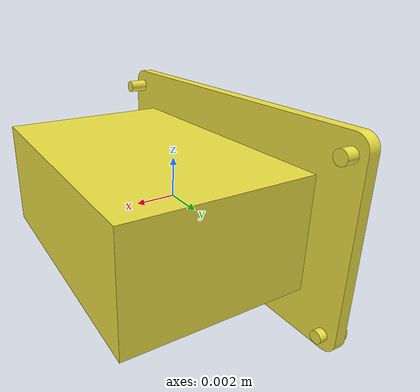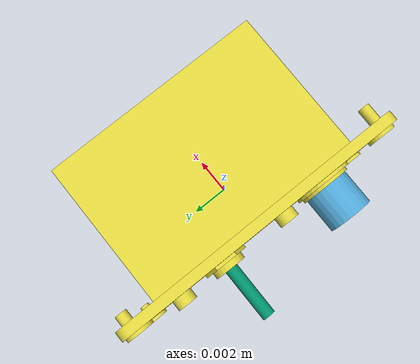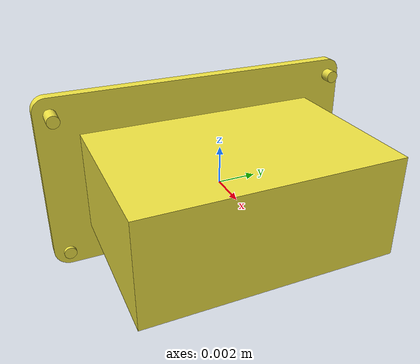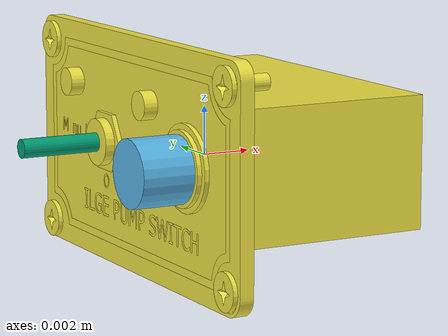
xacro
<robot name="partnet_0799c797-13b2-464f-815e-90c94b472e48" xmlns:xacro="http://wiki.ros.org/xacro">
	<xacro:property name="scale" value="100" /><link name="base" />
	<link name="link_0">
		<visual name="switch-1">
			<origin xyz="${-0.4529609723383803 / scale} ${-0.04648585143361487 / scale} ${-0.5590540000000006 / scale}" />
			<geometry>
				<mesh filename="package://switch_description/urdf/100845/textured_objs/original-13.obj" scale="${1 / scale} ${1 / scale} ${1 / scale}" />
			</geometry>
		</visual>
		<collision>
			<origin xyz="${-0.4529609723383803 / scale} ${-0.04648585143361487 / scale} ${-0.5590540000000006 / scale}" />
			<geometry>
				<mesh filename="package://switch_description/urdf/100845/textured_objs/original-13.obj" scale="${1 / scale} ${1 / scale} ${1 / scale}" />
			</geometry>
		</collision>
	</link>
	<joint name="joint_0" type="continuous">
		<origin xyz="${0.4529609723383803 / scale} ${0.04648585143361487 / scale} ${0.5590540000000006 / scale}" />
		<axis xyz="0 0 1" />
		<child link="link_0" />
		<parent link="link_2" />
	</joint>
	<link name="link_1">
		<visual name="switch-2">
			<origin xyz="${0 / scale} ${-0.042935 / scale} ${-0.36 / scale}" />
			<geometry>
				<mesh filename="package://switch_description/urdf/100845/textured_objs/original-19.obj" scale="${1 / scale} ${1 / scale} ${1 / scale}" />
			</geometry>
		</visual>
		<collision>
			<origin xyz="${0 / scale} ${-0.042935 / scale} ${-0.36 / scale}" />
			<geometry>
				<mesh filename="package://switch_description/urdf/100845/textured_objs/original-19.obj" scale="${1 / scale} ${1 / scale} ${1 / scale}" />
			</geometry>
		</collision>
	</link>
	<joint name="joint_1" type="revolute">
		<origin xyz="${0 / scale} ${0.042935 / scale} ${0.36 / scale}" />
		<axis xyz="-1 0 0" />
		<child link="link_1" />
		<parent link="link_2" />
		<limit lower="-0.5235987755982988" upper="0.5235987755982988" effort="10.0" velocity="0.1" />
	</joint>
	<link name="link_2">
		<visual name="base_body-3">
			<origin xyz="${0 / scale} ${0 / scale} ${0 / scale}" />
			<geometry>
				<mesh filename="package://switch_description/urdf/100845/textured_objs/original-29.obj" scale="${1 / scale} ${1 / scale} ${1 / scale}" />
			</geometry>
		</visual>
		<visual name="base_body-3">
			<origin xyz="${0 / scale} ${0 / scale} ${0 / scale}" />
			<geometry>
				<mesh filename="package://switch_description/urdf/100845/textured_objs/original-21.obj" scale="${1 / scale} ${1 / scale} ${1 / scale}" />
			</geometry>
		</visual>
		<visual name="base_body-3">
			<origin xyz="${0 / scale} ${0 / scale} ${0 / scale}" />
			<geometry>
				<mesh filename="package://switch_description/urdf/100845/textured_objs/original-30.obj" scale="${1 / scale} ${1 / scale} ${1 / scale}" />
			</geometry>
		</visual>
		<visual name="base_body-3">
			<origin xyz="${0 / scale} ${0 / scale} ${0 / scale}" />
			<geometry>
				<mesh filename="package://switch_description/urdf/100845/textured_objs/original-41.obj" scale="${1 / scale} ${1 / scale} ${1 / scale}" />
			</geometry>
		</visual>
		<visual name="base_body-3">
			<origin xyz="${0 / scale} ${0 / scale} ${0 / scale}" />
			<geometry>
				<mesh filename="package://switch_description/urdf/100845/textured_objs/original-28.obj" scale="${1 / scale} ${1 / scale} ${1 / scale}" />
			</geometry>
		</visual>
		<visual name="base_body-3">
			<origin xyz="${0 / scale} ${0 / scale} ${0 / scale}" />
			<geometry>
				<mesh filename="package://switch_description/urdf/100845/textured_objs/original-64.obj" scale="${1 / scale} ${1 / scale} ${1 / scale}" />
			</geometry>
		</visual>
		<visual name="base_body-3">
			<origin xyz="${0 / scale} ${0 / scale} ${0 / scale}" />
			<geometry>
				<mesh filename="package://switch_description/urdf/100845/textured_objs/original-43.obj" scale="${1 / scale} ${1 / scale} ${1 / scale}" />
			</geometry>
		</visual>
		<visual name="base_body-3">
			<origin xyz="${0 / scale} ${0 / scale} ${0 / scale}" />
			<geometry>
				<mesh filename="package://switch_description/urdf/100845/textured_objs/original-52.obj" scale="${1 / scale} ${1 / scale} ${1 / scale}" />
			</geometry>
		</visual>
		<visual name="base_body-3">
			<origin xyz="${0 / scale} ${0 / scale} ${0 / scale}" />
			<geometry>
				<mesh filename="package://switch_description/urdf/100845/textured_objs/original-22.obj" scale="${1 / scale} ${1 / scale} ${1 / scale}" />
			</geometry>
		</visual>
		<visual name="base_body-3">
			<origin xyz="${0 / scale} ${0 / scale} ${0 / scale}" />
			<geometry>
				<mesh filename="package://switch_description/urdf/100845/textured_objs/original-26.obj" scale="${1 / scale} ${1 / scale} ${1 / scale}" />
			</geometry>
		</visual>
		<visual name="base_body-3">
			<origin xyz="${0 / scale} ${0 / scale} ${0 / scale}" />
			<geometry>
				<mesh filename="package://switch_description/urdf/100845/textured_objs/original-4.obj" scale="${1 / scale} ${1 / scale} ${1 / scale}" />
			</geometry>
		</visual>
		<visual name="base_body-3">
			<origin xyz="${0 / scale} ${0 / scale} ${0 / scale}" />
			<geometry>
				<mesh filename="package://switch_description/urdf/100845/textured_objs/original-3.obj" scale="${1 / scale} ${1 / scale} ${1 / scale}" />
			</geometry>
		</visual>
		<visual name="base_body-3">
			<origin xyz="${0 / scale} ${0 / scale} ${0 / scale}" />
			<geometry>
				<mesh filename="package://switch_description/urdf/100845/textured_objs/original-2.obj" scale="${1 / scale} ${1 / scale} ${1 / scale}" />
			</geometry>
		</visual>
		<visual name="base_body-3">
			<origin xyz="${0 / scale} ${0 / scale} ${0 / scale}" />
			<geometry>
				<mesh filename="package://switch_description/urdf/100845/textured_objs/original-44.obj" scale="${1 / scale} ${1 / scale} ${1 / scale}" />
			</geometry>
		</visual>
		<visual name="base_body-3">
			<origin xyz="${0 / scale} ${0 / scale} ${0 / scale}" />
			<geometry>
				<mesh filename="package://switch_description/urdf/100845/textured_objs/original-16.obj" scale="${1 / scale} ${1 / scale} ${1 / scale}" />
			</geometry>
		</visual>
		<visual name="base_body-3">
			<origin xyz="${0 / scale} ${0 / scale} ${0 / scale}" />
			<geometry>
				<mesh filename="package://switch_description/urdf/100845/textured_objs/original-8.obj" scale="${1 / scale} ${1 / scale} ${1 / scale}" />
			</geometry>
		</visual>
		<visual name="base_body-3">
			<origin xyz="${0 / scale} ${0 / scale} ${0 / scale}" />
			<geometry>
				<mesh filename="package://switch_description/urdf/100845/textured_objs/original-9.obj" scale="${1 / scale} ${1 / scale} ${1 / scale}" />
			</geometry>
		</visual>
		<visual name="base_body-3">
			<origin xyz="${0 / scale} ${0 / scale} ${0 / scale}" />
			<geometry>
				<mesh filename="package://switch_description/urdf/100845/textured_objs/original-45.obj" scale="${1 / scale} ${1 / scale} ${1 / scale}" />
			</geometry>
		</visual>
		<visual name="base_body-3">
			<origin xyz="${0 / scale} ${0 / scale} ${0 / scale}" />
			<geometry>
				<mesh filename="package://switch_description/urdf/100845/textured_objs/original-35.obj" scale="${1 / scale} ${1 / scale} ${1 / scale}" />
			</geometry>
		</visual>
		<visual name="base_body-3">
			<origin xyz="${0 / scale} ${0 / scale} ${0 / scale}" />
			<geometry>
				<mesh filename="package://switch_description/urdf/100845/textured_objs/original-49.obj" scale="${1 / scale} ${1 / scale} ${1 / scale}" />
			</geometry>
		</visual>
		<visual name="base_body-3">
			<origin xyz="${0 / scale} ${0 / scale} ${0 / scale}" />
			<geometry>
				<mesh filename="package://switch_description/urdf/100845/textured_objs/original-61.obj" scale="${1 / scale} ${1 / scale} ${1 / scale}" />
			</geometry>
		</visual>
		<visual name="base_body-3">
			<origin xyz="${0 / scale} ${0 / scale} ${0 / scale}" />
			<geometry>
				<mesh filename="package://switch_description/urdf/100845/textured_objs/original-59.obj" scale="${1 / scale} ${1 / scale} ${1 / scale}" />
			</geometry>
		</visual>
		<visual name="base_body-3">
			<origin xyz="${0 / scale} ${0 / scale} ${0 / scale}" />
			<geometry>
				<mesh filename="package://switch_description/urdf/100845/textured_objs/original-5.obj" scale="${1 / scale} ${1 / scale} ${1 / scale}" />
			</geometry>
		</visual>
		<visual name="base_body-3">
			<origin xyz="${0 / scale} ${0 / scale} ${0 / scale}" />
			<geometry>
				<mesh filename="package://switch_description/urdf/100845/textured_objs/original-63.obj" scale="${1 / scale} ${1 / scale} ${1 / scale}" />
			</geometry>
		</visual>
		<visual name="base_body-3">
			<origin xyz="${0 / scale} ${0 / scale} ${0 / scale}" />
			<geometry>
				<mesh filename="package://switch_description/urdf/100845/textured_objs/original-27.obj" scale="${1 / scale} ${1 / scale} ${1 / scale}" />
			</geometry>
		</visual>
		<visual name="base_body-3">
			<origin xyz="${0 / scale} ${0 / scale} ${0 / scale}" />
			<geometry>
				<mesh filename="package://switch_description/urdf/100845/textured_objs/original-51.obj" scale="${1 / scale} ${1 / scale} ${1 / scale}" />
			</geometry>
		</visual>
		<visual name="base_body-3">
			<origin xyz="${0 / scale} ${0 / scale} ${0 / scale}" />
			<geometry>
				<mesh filename="package://switch_description/urdf/100845/textured_objs/original-55.obj" scale="${1 / scale} ${1 / scale} ${1 / scale}" />
			</geometry>
		</visual>
		<visual name="base_body-3">
			<origin xyz="${0 / scale} ${0 / scale} ${0 / scale}" />
			<geometry>
				<mesh filename="package://switch_description/urdf/100845/textured_objs/original-50.obj" scale="${1 / scale} ${1 / scale} ${1 / scale}" />
			</geometry>
		</visual>
		<visual name="base_body-3">
			<origin xyz="${0 / scale} ${0 / scale} ${0 / scale}" />
			<geometry>
				<mesh filename="package://switch_description/urdf/100845/textured_objs/original-6.obj" scale="${1 / scale} ${1 / scale} ${1 / scale}" />
			</geometry>
		</visual>
		<visual name="base_body-3">
			<origin xyz="${0 / scale} ${0 / scale} ${0 / scale}" />
			<geometry>
				<mesh filename="package://switch_description/urdf/100845/textured_objs/original-31.obj" scale="${1 / scale} ${1 / scale} ${1 / scale}" />
			</geometry>
		</visual>
		<visual name="base_body-3">
			<origin xyz="${0 / scale} ${0 / scale} ${0 / scale}" />
			<geometry>
				<mesh filename="package://switch_description/urdf/100845/textured_objs/original-37.obj" scale="${1 / scale} ${1 / scale} ${1 / scale}" />
			</geometry>
		</visual>
		<visual name="base_body-3">
			<origin xyz="${0 / scale} ${0 / scale} ${0 / scale}" />
			<geometry>
				<mesh filename="package://switch_description/urdf/100845/textured_objs/original-48.obj" scale="${1 / scale} ${1 / scale} ${1 / scale}" />
			</geometry>
		</visual>
		<visual name="base_body-3">
			<origin xyz="${0 / scale} ${0 / scale} ${0 / scale}" />
			<geometry>
				<mesh filename="package://switch_description/urdf/100845/textured_objs/original-15.obj" scale="${1 / scale} ${1 / scale} ${1 / scale}" />
			</geometry>
		</visual>
		<visual name="base_body-3">
			<origin xyz="${0 / scale} ${0 / scale} ${0 / scale}" />
			<geometry>
				<mesh filename="package://switch_description/urdf/100845/textured_objs/original-56.obj" scale="${1 / scale} ${1 / scale} ${1 / scale}" />
			</geometry>
		</visual>
		<visual name="base_body-3">
			<origin xyz="${0 / scale} ${0 / scale} ${0 / scale}" />
			<geometry>
				<mesh filename="package://switch_description/urdf/100845/textured_objs/original-62.obj" scale="${1 / scale} ${1 / scale} ${1 / scale}" />
			</geometry>
		</visual>
		<visual name="base_body-3">
			<origin xyz="${0 / scale} ${0 / scale} ${0 / scale}" />
			<geometry>
				<mesh filename="package://switch_description/urdf/100845/textured_objs/original-23.obj" scale="${1 / scale} ${1 / scale} ${1 / scale}" />
			</geometry>
		</visual>
		<visual name="base_body-3">
			<origin xyz="${0 / scale} ${0 / scale} ${0 / scale}" />
			<geometry>
				<mesh filename="package://switch_description/urdf/100845/textured_objs/original-66.obj" scale="${1 / scale} ${1 / scale} ${1 / scale}" />
			</geometry>
		</visual>
		<visual name="base_body-3">
			<origin xyz="${0 / scale} ${0 / scale} ${0 / scale}" />
			<geometry>
				<mesh filename="package://switch_description/urdf/100845/textured_objs/original-58.obj" scale="${1 / scale} ${1 / scale} ${1 / scale}" />
			</geometry>
		</visual>
		<visual name="base_body-3">
			<origin xyz="${0 / scale} ${0 / scale} ${0 / scale}" />
			<geometry>
				<mesh filename="package://switch_description/urdf/100845/textured_objs/original-67.obj" scale="${1 / scale} ${1 / scale} ${1 / scale}" />
			</geometry>
		</visual>
		<visual name="base_body-3">
			<origin xyz="${0 / scale} ${0 / scale} ${0 / scale}" />
			<geometry>
				<mesh filename="package://switch_description/urdf/100845/textured_objs/original-69.obj" scale="${1 / scale} ${1 / scale} ${1 / scale}" />
			</geometry>
		</visual>
		<visual name="base_body-3">
			<origin xyz="${0 / scale} ${0 / scale} ${0 / scale}" />
			<geometry>
				<mesh filename="package://switch_description/urdf/100845/textured_objs/original-11.obj" scale="${1 / scale} ${1 / scale} ${1 / scale}" />
			</geometry>
		</visual>
		<visual name="base_body-3">
			<origin xyz="${0 / scale} ${0 / scale} ${0 / scale}" />
			<geometry>
				<mesh filename="package://switch_description/urdf/100845/textured_objs/original-38.obj" scale="${1 / scale} ${1 / scale} ${1 / scale}" />
			</geometry>
		</visual>
		<visual name="base_body-3">
			<origin xyz="${0 / scale} ${0 / scale} ${0 / scale}" />
			<geometry>
				<mesh filename="package://switch_description/urdf/100845/textured_objs/original-68.obj" scale="${1 / scale} ${1 / scale} ${1 / scale}" />
			</geometry>
		</visual>
		<visual name="base_body-3">
			<origin xyz="${0 / scale} ${0 / scale} ${0 / scale}" />
			<geometry>
				<mesh filename="package://switch_description/urdf/100845/textured_objs/original-34.obj" scale="${1 / scale} ${1 / scale} ${1 / scale}" />
			</geometry>
		</visual>
		<visual name="base_body-3">
			<origin xyz="${0 / scale} ${0 / scale} ${0 / scale}" />
			<geometry>
				<mesh filename="package://switch_description/urdf/100845/textured_objs/original-18.obj" scale="${1 / scale} ${1 / scale} ${1 / scale}" />
			</geometry>
		</visual>
		<visual name="base_body-3">
			<origin xyz="${0 / scale} ${0 / scale} ${0 / scale}" />
			<geometry>
				<mesh filename="package://switch_description/urdf/100845/textured_objs/original-25.obj" scale="${1 / scale} ${1 / scale} ${1 / scale}" />
			</geometry>
		</visual>
		<visual name="base_body-3">
			<origin xyz="${0 / scale} ${0 / scale} ${0 / scale}" />
			<geometry>
				<mesh filename="package://switch_description/urdf/100845/textured_objs/original-17.obj" scale="${1 / scale} ${1 / scale} ${1 / scale}" />
			</geometry>
		</visual>
		<visual name="base_body-3">
			<origin xyz="${0 / scale} ${0 / scale} ${0 / scale}" />
			<geometry>
				<mesh filename="package://switch_description/urdf/100845/textured_objs/original-12.obj" scale="${1 / scale} ${1 / scale} ${1 / scale}" />
			</geometry>
		</visual>
		<visual name="base_body-3">
			<origin xyz="${0 / scale} ${0 / scale} ${0 / scale}" />
			<geometry>
				<mesh filename="package://switch_description/urdf/100845/textured_objs/original-42.obj" scale="${1 / scale} ${1 / scale} ${1 / scale}" />
			</geometry>
		</visual>
		<visual name="base_body-3">
			<origin xyz="${0 / scale} ${0 / scale} ${0 / scale}" />
			<geometry>
				<mesh filename="package://switch_description/urdf/100845/textured_objs/original-24.obj" scale="${1 / scale} ${1 / scale} ${1 / scale}" />
			</geometry>
		</visual>
		<visual name="base_body-3">
			<origin xyz="${0 / scale} ${0 / scale} ${0 / scale}" />
			<geometry>
				<mesh filename="package://switch_description/urdf/100845/textured_objs/original-20.obj" scale="${1 / scale} ${1 / scale} ${1 / scale}" />
			</geometry>
		</visual>
		<visual name="base_body-3">
			<origin xyz="${0 / scale} ${0 / scale} ${0 / scale}" />
			<geometry>
				<mesh filename="package://switch_description/urdf/100845/textured_objs/original-32.obj" scale="${1 / scale} ${1 / scale} ${1 / scale}" />
			</geometry>
		</visual>
		<visual name="base_body-3">
			<origin xyz="${0 / scale} ${0 / scale} ${0 / scale}" />
			<geometry>
				<mesh filename="package://switch_description/urdf/100845/textured_objs/original-47.obj" scale="${1 / scale} ${1 / scale} ${1 / scale}" />
			</geometry>
		</visual>
		<visual name="base_body-3">
			<origin xyz="${0 / scale} ${0 / scale} ${0 / scale}" />
			<geometry>
				<mesh filename="package://switch_description/urdf/100845/textured_objs/original-53.obj" scale="${1 / scale} ${1 / scale} ${1 / scale}" />
			</geometry>
		</visual>
		<visual name="base_body-3">
			<origin xyz="${0 / scale} ${0 / scale} ${0 / scale}" />
			<geometry>
				<mesh filename="package://switch_description/urdf/100845/textured_objs/original-7.obj" scale="${1 / scale} ${1 / scale} ${1 / scale}" />
			</geometry>
		</visual>
		<visual name="base_body-3">
			<origin xyz="${0 / scale} ${0 / scale} ${0 / scale}" />
			<geometry>
				<mesh filename="package://switch_description/urdf/100845/textured_objs/original-1.obj" scale="${1 / scale} ${1 / scale} ${1 / scale}" />
			</geometry>
		</visual>
		<visual name="base_body-3">
			<origin xyz="${0 / scale} ${0 / scale} ${0 / scale}" />
			<geometry>
				<mesh filename="package://switch_description/urdf/100845/textured_objs/original-10.obj" scale="${1 / scale} ${1 / scale} ${1 / scale}" />
			</geometry>
		</visual>
		<visual name="base_body-3">
			<origin xyz="${0 / scale} ${0 / scale} ${0 / scale}" />
			<geometry>
				<mesh filename="package://switch_description/urdf/100845/textured_objs/original-14.obj" scale="${1 / scale} ${1 / scale} ${1 / scale}" />
			</geometry>
		</visual>
		<visual name="base_body-3">
			<origin xyz="${0 / scale} ${0 / scale} ${0 / scale}" />
			<geometry>
				<mesh filename="package://switch_description/urdf/100845/textured_objs/original-40.obj" scale="${1 / scale} ${1 / scale} ${1 / scale}" />
			</geometry>
		</visual>
		<visual name="base_body-3">
			<origin xyz="${0 / scale} ${0 / scale} ${0 / scale}" />
			<geometry>
				<mesh filename="package://switch_description/urdf/100845/textured_objs/original-46.obj" scale="${1 / scale} ${1 / scale} ${1 / scale}" />
			</geometry>
		</visual>
		<collision>
			<origin xyz="${0 / scale} ${0 / scale} ${0 / scale}" />
			<geometry>
				<mesh filename="package://switch_description/urdf/100845/textured_objs/original-29.obj" scale="${1 / scale} ${1 / scale} ${1 / scale}" />
			</geometry>
		</collision>
		<collision>
			<origin xyz="${0 / scale} ${0 / scale} ${0 / scale}" />
			<geometry>
				<mesh filename="package://switch_description/urdf/100845/textured_objs/original-21.obj" scale="${1 / scale} ${1 / scale} ${1 / scale}" />
			</geometry>
		</collision>
		<collision>
			<origin xyz="${0 / scale} ${0 / scale} ${0 / scale}" />
			<geometry>
				<mesh filename="package://switch_description/urdf/100845/textured_objs/original-30.obj" scale="${1 / scale} ${1 / scale} ${1 / scale}" />
			</geometry>
		</collision>
		<collision>
			<origin xyz="${0 / scale} ${0 / scale} ${0 / scale}" />
			<geometry>
				<mesh filename="package://switch_description/urdf/100845/textured_objs/original-41.obj" scale="${1 / scale} ${1 / scale} ${1 / scale}" />
			</geometry>
		</collision>
		<collision>
			<origin xyz="${0 / scale} ${0 / scale} ${0 / scale}" />
			<geometry>
				<mesh filename="package://switch_description/urdf/100845/textured_objs/original-28.obj" scale="${1 / scale} ${1 / scale} ${1 / scale}" />
			</geometry>
		</collision>
		<collision>
			<origin xyz="${0 / scale} ${0 / scale} ${0 / scale}" />
			<geometry>
				<mesh filename="package://switch_description/urdf/100845/textured_objs/original-64.obj" scale="${1 / scale} ${1 / scale} ${1 / scale}" />
			</geometry>
		</collision>
		<collision>
			<origin xyz="${0 / scale} ${0 / scale} ${0 / scale}" />
			<geometry>
				<mesh filename="package://switch_description/urdf/100845/textured_objs/original-43.obj" scale="${1 / scale} ${1 / scale} ${1 / scale}" />
			</geometry>
		</collision>
		<collision>
			<origin xyz="${0 / scale} ${0 / scale} ${0 / scale}" />
			<geometry>
				<mesh filename="package://switch_description/urdf/100845/textured_objs/original-52.obj" scale="${1 / scale} ${1 / scale} ${1 / scale}" />
			</geometry>
		</collision>
		<collision>
			<origin xyz="${0 / scale} ${0 / scale} ${0 / scale}" />
			<geometry>
				<mesh filename="package://switch_description/urdf/100845/textured_objs/original-22.obj" scale="${1 / scale} ${1 / scale} ${1 / scale}" />
			</geometry>
		</collision>
		<collision>
			<origin xyz="${0 / scale} ${0 / scale} ${0 / scale}" />
			<geometry>
				<mesh filename="package://switch_description/urdf/100845/textured_objs/original-26.obj" scale="${1 / scale} ${1 / scale} ${1 / scale}" />
			</geometry>
		</collision>
		<collision>
			<origin xyz="${0 / scale} ${0 / scale} ${0 / scale}" />
			<geometry>
				<mesh filename="package://switch_description/urdf/100845/textured_objs/original-4.obj" scale="${1 / scale} ${1 / scale} ${1 / scale}" />
			</geometry>
		</collision>
		<collision>
			<origin xyz="${0 / scale} ${0 / scale} ${0 / scale}" />
			<geometry>
				<mesh filename="package://switch_description/urdf/100845/textured_objs/original-3.obj" scale="${1 / scale} ${1 / scale} ${1 / scale}" />
			</geometry>
		</collision>
		<collision>
			<origin xyz="${0 / scale} ${0 / scale} ${0 / scale}" />
			<geometry>
				<mesh filename="package://switch_description/urdf/100845/textured_objs/original-2.obj" scale="${1 / scale} ${1 / scale} ${1 / scale}" />
			</geometry>
		</collision>
		<collision>
			<origin xyz="${0 / scale} ${0 / scale} ${0 / scale}" />
			<geometry>
				<mesh filename="package://switch_description/urdf/100845/textured_objs/original-44.obj" scale="${1 / scale} ${1 / scale} ${1 / scale}" />
			</geometry>
		</collision>
		<collision>
			<origin xyz="${0 / scale} ${0 / scale} ${0 / scale}" />
			<geometry>
				<mesh filename="package://switch_description/urdf/100845/textured_objs/original-16.obj" scale="${1 / scale} ${1 / scale} ${1 / scale}" />
			</geometry>
		</collision>
		<collision>
			<origin xyz="${0 / scale} ${0 / scale} ${0 / scale}" />
			<geometry>
				<mesh filename="package://switch_description/urdf/100845/textured_objs/original-8.obj" scale="${1 / scale} ${1 / scale} ${1 / scale}" />
			</geometry>
		</collision>
		<collision>
			<origin xyz="${0 / scale} ${0 / scale} ${0 / scale}" />
			<geometry>
				<mesh filename="package://switch_description/urdf/100845/textured_objs/original-9.obj" scale="${1 / scale} ${1 / scale} ${1 / scale}" />
			</geometry>
		</collision>
		<collision>
			<origin xyz="${0 / scale} ${0 / scale} ${0 / scale}" />
			<geometry>
				<mesh filename="package://switch_description/urdf/100845/textured_objs/original-45.obj" scale="${1 / scale} ${1 / scale} ${1 / scale}" />
			</geometry>
		</collision>
		<collision>
			<origin xyz="${0 / scale} ${0 / scale} ${0 / scale}" />
			<geometry>
				<mesh filename="package://switch_description/urdf/100845/textured_objs/original-35.obj" scale="${1 / scale} ${1 / scale} ${1 / scale}" />
			</geometry>
		</collision>
		<collision>
			<origin xyz="${0 / scale} ${0 / scale} ${0 / scale}" />
			<geometry>
				<mesh filename="package://switch_description/urdf/100845/textured_objs/original-49.obj" scale="${1 / scale} ${1 / scale} ${1 / scale}" />
			</geometry>
		</collision>
		<collision>
			<origin xyz="${0 / scale} ${0 / scale} ${0 / scale}" />
			<geometry>
				<mesh filename="package://switch_description/urdf/100845/textured_objs/original-61.obj" scale="${1 / scale} ${1 / scale} ${1 / scale}" />
			</geometry>
		</collision>
		<collision>
			<origin xyz="${0 / scale} ${0 / scale} ${0 / scale}" />
			<geometry>
				<mesh filename="package://switch_description/urdf/100845/textured_objs/original-59.obj" scale="${1 / scale} ${1 / scale} ${1 / scale}" />
			</geometry>
		</collision>
		<collision>
			<origin xyz="${0 / scale} ${0 / scale} ${0 / scale}" />
			<geometry>
				<mesh filename="package://switch_description/urdf/100845/textured_objs/original-5.obj" scale="${1 / scale} ${1 / scale} ${1 / scale}" />
			</geometry>
		</collision>
		<collision>
			<origin xyz="${0 / scale} ${0 / scale} ${0 / scale}" />
			<geometry>
				<mesh filename="package://switch_description/urdf/100845/textured_objs/original-63.obj" scale="${1 / scale} ${1 / scale} ${1 / scale}" />
			</geometry>
		</collision>
		<collision>
			<origin xyz="${0 / scale} ${0 / scale} ${0 / scale}" />
			<geometry>
				<mesh filename="package://switch_description/urdf/100845/textured_objs/original-27.obj" scale="${1 / scale} ${1 / scale} ${1 / scale}" />
			</geometry>
		</collision>
		<collision>
			<origin xyz="${0 / scale} ${0 / scale} ${0 / scale}" />
			<geometry>
				<mesh filename="package://switch_description/urdf/100845/textured_objs/original-51.obj" scale="${1 / scale} ${1 / scale} ${1 / scale}" />
			</geometry>
		</collision>
		<collision>
			<origin xyz="${0 / scale} ${0 / scale} ${0 / scale}" />
			<geometry>
				<mesh filename="package://switch_description/urdf/100845/textured_objs/original-55.obj" scale="${1 / scale} ${1 / scale} ${1 / scale}" />
			</geometry>
		</collision>
		<collision>
			<origin xyz="${0 / scale} ${0 / scale} ${0 / scale}" />
			<geometry>
				<mesh filename="package://switch_description/urdf/100845/textured_objs/original-50.obj" scale="${1 / scale} ${1 / scale} ${1 / scale}" />
			</geometry>
		</collision>
		<collision>
			<origin xyz="${0 / scale} ${0 / scale} ${0 / scale}" />
			<geometry>
				<mesh filename="package://switch_description/urdf/100845/textured_objs/original-6.obj" scale="${1 / scale} ${1 / scale} ${1 / scale}" />
			</geometry>
		</collision>
		<collision>
			<origin xyz="${0 / scale} ${0 / scale} ${0 / scale}" />
			<geometry>
				<mesh filename="package://switch_description/urdf/100845/textured_objs/original-31.obj" scale="${1 / scale} ${1 / scale} ${1 / scale}" />
			</geometry>
		</collision>
		<collision>
			<origin xyz="${0 / scale} ${0 / scale} ${0 / scale}" />
			<geometry>
				<mesh filename="package://switch_description/urdf/100845/textured_objs/original-37.obj" scale="${1 / scale} ${1 / scale} ${1 / scale}" />
			</geometry>
		</collision>
		<collision>
			<origin xyz="${0 / scale} ${0 / scale} ${0 / scale}" />
			<geometry>
				<mesh filename="package://switch_description/urdf/100845/textured_objs/original-48.obj" scale="${1 / scale} ${1 / scale} ${1 / scale}" />
			</geometry>
		</collision>
		<collision>
			<origin xyz="${0 / scale} ${0 / scale} ${0 / scale}" />
			<geometry>
				<mesh filename="package://switch_description/urdf/100845/textured_objs/original-15.obj" scale="${1 / scale} ${1 / scale} ${1 / scale}" />
			</geometry>
		</collision>
		<collision>
			<origin xyz="${0 / scale} ${0 / scale} ${0 / scale}" />
			<geometry>
				<mesh filename="package://switch_description/urdf/100845/textured_objs/original-56.obj" scale="${1 / scale} ${1 / scale} ${1 / scale}" />
			</geometry>
		</collision>
		<collision>
			<origin xyz="${0 / scale} ${0 / scale} ${0 / scale}" />
			<geometry>
				<mesh filename="package://switch_description/urdf/100845/textured_objs/original-62.obj" scale="${1 / scale} ${1 / scale} ${1 / scale}" />
			</geometry>
		</collision>
		<collision>
			<origin xyz="${0 / scale} ${0 / scale} ${0 / scale}" />
			<geometry>
				<mesh filename="package://switch_description/urdf/100845/textured_objs/original-23.obj" scale="${1 / scale} ${1 / scale} ${1 / scale}" />
			</geometry>
		</collision>
		<collision>
			<origin xyz="${0 / scale} ${0 / scale} ${0 / scale}" />
			<geometry>
				<mesh filename="package://switch_description/urdf/100845/textured_objs/original-66.obj" scale="${1 / scale} ${1 / scale} ${1 / scale}" />
			</geometry>
		</collision>
		<collision>
			<origin xyz="${0 / scale} ${0 / scale} ${0 / scale}" />
			<geometry>
				<mesh filename="package://switch_description/urdf/100845/textured_objs/original-58.obj" scale="${1 / scale} ${1 / scale} ${1 / scale}" />
			</geometry>
		</collision>
		<collision>
			<origin xyz="${0 / scale} ${0 / scale} ${0 / scale}" />
			<geometry>
				<mesh filename="package://switch_description/urdf/100845/textured_objs/original-67.obj" scale="${1 / scale} ${1 / scale} ${1 / scale}" />
			</geometry>
		</collision>
		<collision>
			<origin xyz="${0 / scale} ${0 / scale} ${0 / scale}" />
			<geometry>
				<mesh filename="package://switch_description/urdf/100845/textured_objs/original-69.obj" scale="${1 / scale} ${1 / scale} ${1 / scale}" />
			</geometry>
		</collision>
		<collision>
			<origin xyz="${0 / scale} ${0 / scale} ${0 / scale}" />
			<geometry>
				<mesh filename="package://switch_description/urdf/100845/textured_objs/original-11.obj" scale="${1 / scale} ${1 / scale} ${1 / scale}" />
			</geometry>
		</collision>
		<collision>
			<origin xyz="${0 / scale} ${0 / scale} ${0 / scale}" />
			<geometry>
				<mesh filename="package://switch_description/urdf/100845/textured_objs/original-38.obj" scale="${1 / scale} ${1 / scale} ${1 / scale}" />
			</geometry>
		</collision>
		<collision>
			<origin xyz="${0 / scale} ${0 / scale} ${0 / scale}" />
			<geometry>
				<mesh filename="package://switch_description/urdf/100845/textured_objs/original-68.obj" scale="${1 / scale} ${1 / scale} ${1 / scale}" />
			</geometry>
		</collision>
		<collision>
			<origin xyz="${0 / scale} ${0 / scale} ${0 / scale}" />
			<geometry>
				<mesh filename="package://switch_description/urdf/100845/textured_objs/original-34.obj" scale="${1 / scale} ${1 / scale} ${1 / scale}" />
			</geometry>
		</collision>
		<collision>
			<origin xyz="${0 / scale} ${0 / scale} ${0 / scale}" />
			<geometry>
				<mesh filename="package://switch_description/urdf/100845/textured_objs/original-18.obj" scale="${1 / scale} ${1 / scale} ${1 / scale}" />
			</geometry>
		</collision>
		<collision>
			<origin xyz="${0 / scale} ${0 / scale} ${0 / scale}" />
			<geometry>
				<mesh filename="package://switch_description/urdf/100845/textured_objs/original-25.obj" scale="${1 / scale} ${1 / scale} ${1 / scale}" />
			</geometry>
		</collision>
		<collision>
			<origin xyz="${0 / scale} ${0 / scale} ${0 / scale}" />
			<geometry>
				<mesh filename="package://switch_description/urdf/100845/textured_objs/original-17.obj" scale="${1 / scale} ${1 / scale} ${1 / scale}" />
			</geometry>
		</collision>
		<collision>
			<origin xyz="${0 / scale} ${0 / scale} ${0 / scale}" />
			<geometry>
				<mesh filename="package://switch_description/urdf/100845/textured_objs/original-12.obj" scale="${1 / scale} ${1 / scale} ${1 / scale}" />
			</geometry>
		</collision>
		<collision>
			<origin xyz="${0 / scale} ${0 / scale} ${0 / scale}" />
			<geometry>
				<mesh filename="package://switch_description/urdf/100845/textured_objs/original-42.obj" scale="${1 / scale} ${1 / scale} ${1 / scale}" />
			</geometry>
		</collision>
		<collision>
			<origin xyz="${0 / scale} ${0 / scale} ${0 / scale}" />
			<geometry>
				<mesh filename="package://switch_description/urdf/100845/textured_objs/original-24.obj" scale="${1 / scale} ${1 / scale} ${1 / scale}" />
			</geometry>
		</collision>
		<collision>
			<origin xyz="${0 / scale} ${0 / scale} ${0 / scale}" />
			<geometry>
				<mesh filename="package://switch_description/urdf/100845/textured_objs/original-20.obj" scale="${1 / scale} ${1 / scale} ${1 / scale}" />
			</geometry>
		</collision>
		<collision>
			<origin xyz="${0 / scale} ${0 / scale} ${0 / scale}" />
			<geometry>
				<mesh filename="package://switch_description/urdf/100845/textured_objs/original-32.obj" scale="${1 / scale} ${1 / scale} ${1 / scale}" />
			</geometry>
		</collision>
		<collision>
			<origin xyz="${0 / scale} ${0 / scale} ${0 / scale}" />
			<geometry>
				<mesh filename="package://switch_description/urdf/100845/textured_objs/original-47.obj" scale="${1 / scale} ${1 / scale} ${1 / scale}" />
			</geometry>
		</collision>
		<collision>
			<origin xyz="${0 / scale} ${0 / scale} ${0 / scale}" />
			<geometry>
				<mesh filename="package://switch_description/urdf/100845/textured_objs/original-53.obj" scale="${1 / scale} ${1 / scale} ${1 / scale}" />
			</geometry>
		</collision>
		<collision>
			<origin xyz="${0 / scale} ${0 / scale} ${0 / scale}" />
			<geometry>
				<mesh filename="package://switch_description/urdf/100845/textured_objs/original-7.obj" scale="${1 / scale} ${1 / scale} ${1 / scale}" />
			</geometry>
		</collision>
		<collision>
			<origin xyz="${0 / scale} ${0 / scale} ${0 / scale}" />
			<geometry>
				<mesh filename="package://switch_description/urdf/100845/textured_objs/original-1.obj" scale="${1 / scale} ${1 / scale} ${1 / scale}" />
			</geometry>
		</collision>
		<collision>
			<origin xyz="${0 / scale} ${0 / scale} ${0 / scale}" />
			<geometry>
				<mesh filename="package://switch_description/urdf/100845/textured_objs/original-10.obj" scale="${1 / scale} ${1 / scale} ${1 / scale}" />
			</geometry>
		</collision>
		<collision>
			<origin xyz="${0 / scale} ${0 / scale} ${0 / scale}" />
			<geometry>
				<mesh filename="package://switch_description/urdf/100845/textured_objs/original-14.obj" scale="${1 / scale} ${1 / scale} ${1 / scale}" />
			</geometry>
		</collision>
		<collision>
			<origin xyz="${0 / scale} ${0 / scale} ${0 / scale}" />
			<geometry>
				<mesh filename="package://switch_description/urdf/100845/textured_objs/original-40.obj" scale="${1 / scale} ${1 / scale} ${1 / scale}" />
			</geometry>
		</collision>
		<collision>
			<origin xyz="${0 / scale} ${0 / scale} ${0 / scale}" />
			<geometry>
				<mesh filename="package://switch_description/urdf/100845/textured_objs/original-46.obj" scale="${1 / scale} ${1 / scale} ${1 / scale}" />
			</geometry>
		</collision>
	</link>
	<joint name="joint_2" type="fixed">
		<origin rpy="1.570796326794897 0 -1.570796326794897" xyz="${0 / scale} ${0 / scale} ${0 / scale}" />
		<child link="link_2" />
		<parent link="base" />
	</joint>
</robot>
